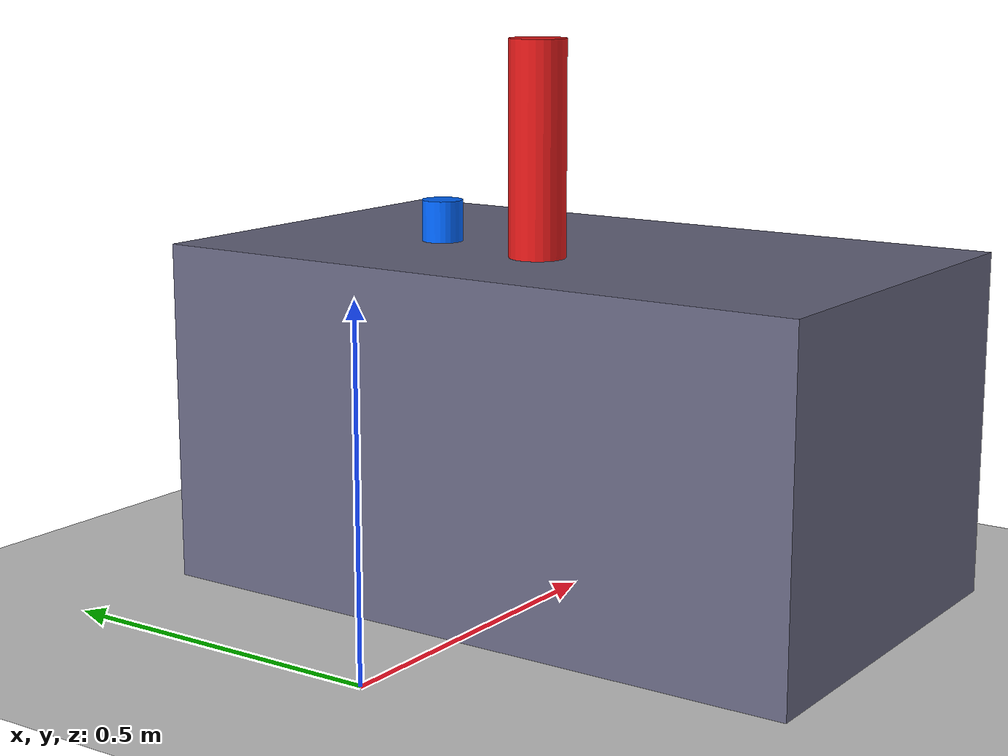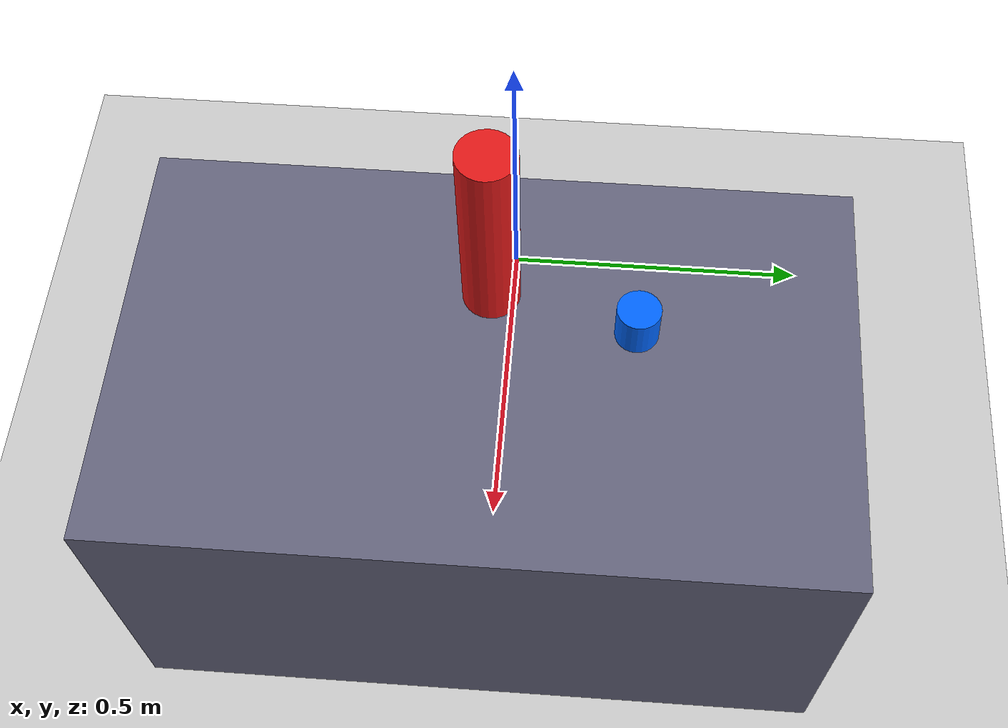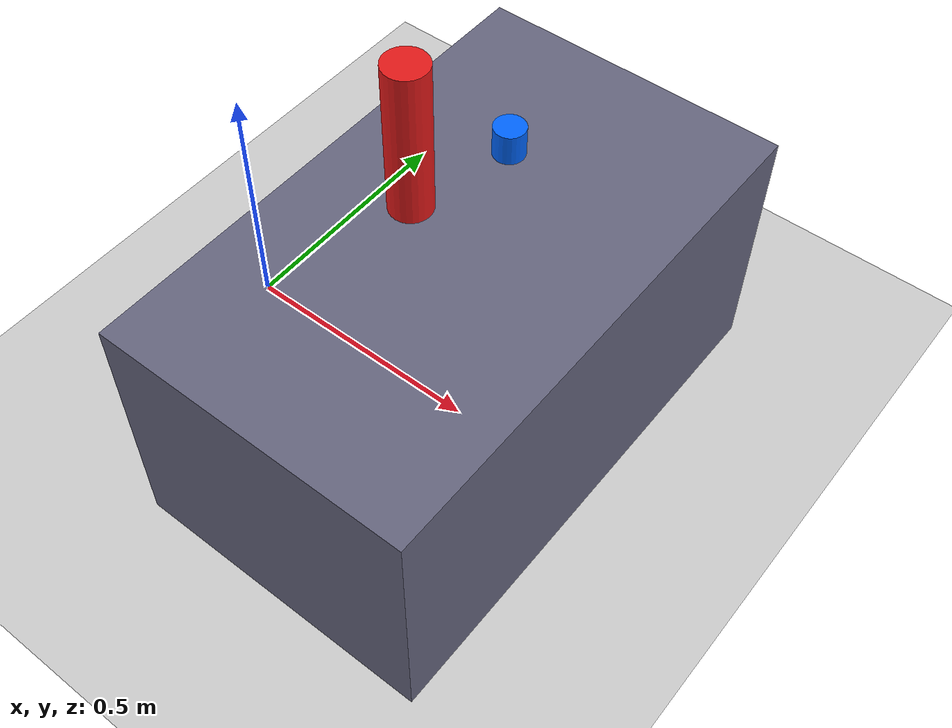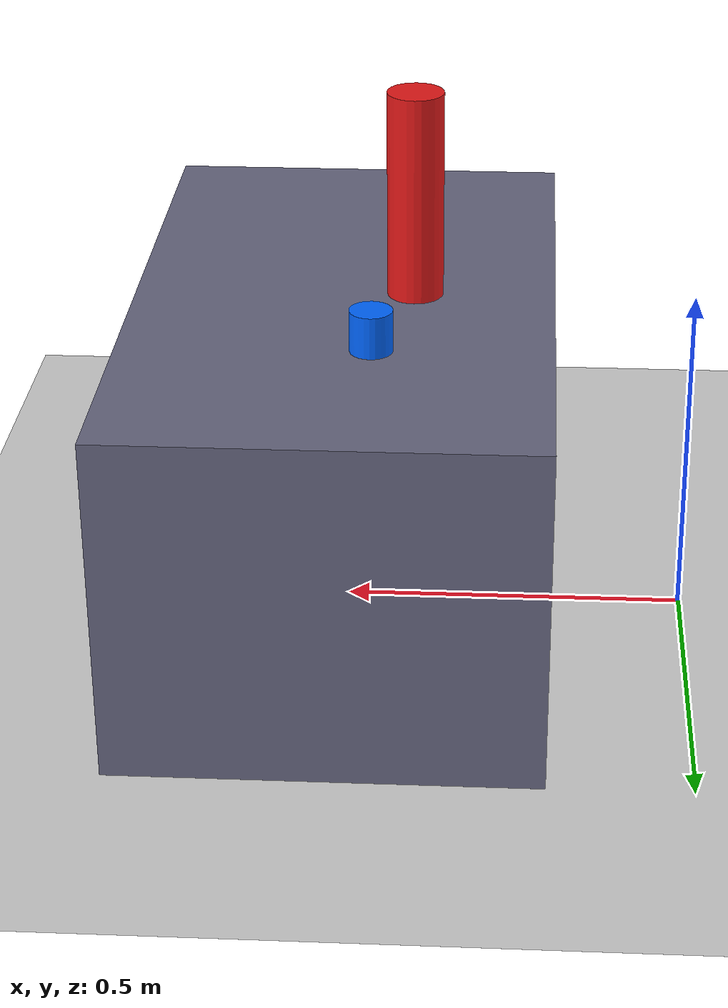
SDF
<?xml version="1.0" ?>
<sdf version="1.8">
  <world name="workcell_world">
    <physics name="1ms" type="ignored">
      <max_step_size>0.001</max_step_size>
      <real_time_factor>1.0</real_time_factor>
    </physics>

    <plugin filename="gz-sim-physics-system" name="gz::sim::systems::Physics"/>
    <plugin filename="gz-sim-user-commands-system" name="gz::sim::systems::UserCommands"/>
    <plugin filename="gz-sim-scene-broadcaster-system" name="gz::sim::systems::SceneBroadcaster"/>
    <plugin filename="gz-sim-contact-system" name="gz::sim::systems::Contact"/>

    <light type="directional" name="sun">
      <cast_shadows>true</cast_shadows>
      <pose>0 0 10 0 0 0</pose>
      <diffuse>0.8 0.8 0.8 1</diffuse>
      <specular>0.2 0.2 0.2 1</specular>
      <direction>-0.5 0.1 -0.9</direction>
    </light>

    <model name="ground_plane">
      <static>true</static>
      <link name="link">
        <collision name="collision">
          <geometry><plane><normal>0 0 1</normal><size>20 20</size></plane></geometry>
        </collision>
        <visual name="visual">
          <geometry><plane><normal>0 0 1</normal><size>20 20</size></plane></geometry>
          <material>
            <ambient>0.8 0.8 0.8 1</ambient>
            <diffuse>0.8 0.8 0.8 1</diffuse>
          </material>
        </visual>
      </link>
    </model>

    <model name="work_table">
      <static>true</static>
      <pose>0.5 0 0.25 0 0 0</pose>
      <link name="table_link">
        <collision name="table_collision">
          <geometry>
            <box><size>0.6 1.0 0.5</size></box>
          </geometry>
        </collision>
        <visual name="table_visual">
          <geometry>
            <box><size>0.6 1.0 0.5</size></box>
          </geometry>
          <material>
            <ambient>0.3 0.3 0.35 1</ambient>
            <diffuse>0.4 0.4 0.5 1</diffuse>
          </material>
        </visual>
      </link>
    </model>

    <model name="target_part_blue">
      <pose>0.45 0.2 0.53 0 0 0</pose>
      <link name="part_link">
        <inertial>
          <mass>0.1</mass>
          <inertia>
            <ixx>0.0001</ixx><iyy>0.0001</iyy><izz>0.0001</izz>
          </inertia>
        </inertial>
        <collision name="collision">
          <geometry><cylinder><radius>0.03</radius><length>0.06</length></cylinder></geometry>
        </collision>
        <visual name="visual">
          <geometry><cylinder><radius>0.03</radius><length>0.06</length></cylinder></geometry>
          <material>
            <ambient>0.0 0.2 0.8 1</ambient>
            <diffuse>0.0 0.4 1.0 1</diffuse>
          </material>
        </visual>
      </link>
    </model>

    <model name="obstacle_pillar">
      <static>true</static>
      <pose>0.4 0.0 0.65 0 0 0</pose>
      <link name="pillar_link">
        <collision name="collision">
          <geometry><cylinder><radius>0.04</radius><length>0.30</length></cylinder></geometry>
        </collision>
        <visual name="visual">
          <geometry><cylinder><radius>0.04</radius><length>0.30</length></cylinder></geometry>
          <material>
            <ambient>0.8 0.1 0.1 1</ambient>
            <diffuse>0.9 0.1 0.1 1</diffuse>
          </material>
        </visual>
      </link>
    </model>

  </world>
</sdf>
